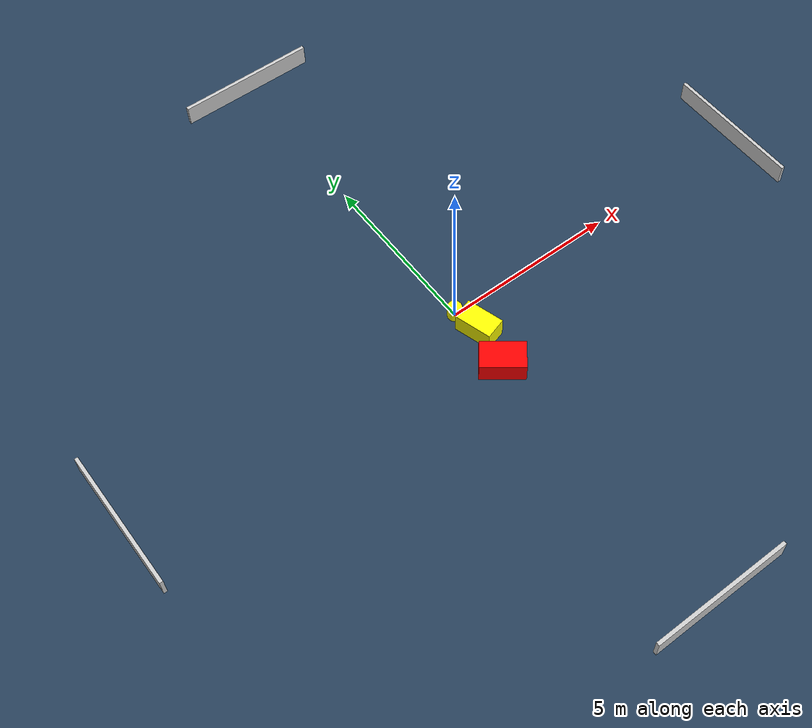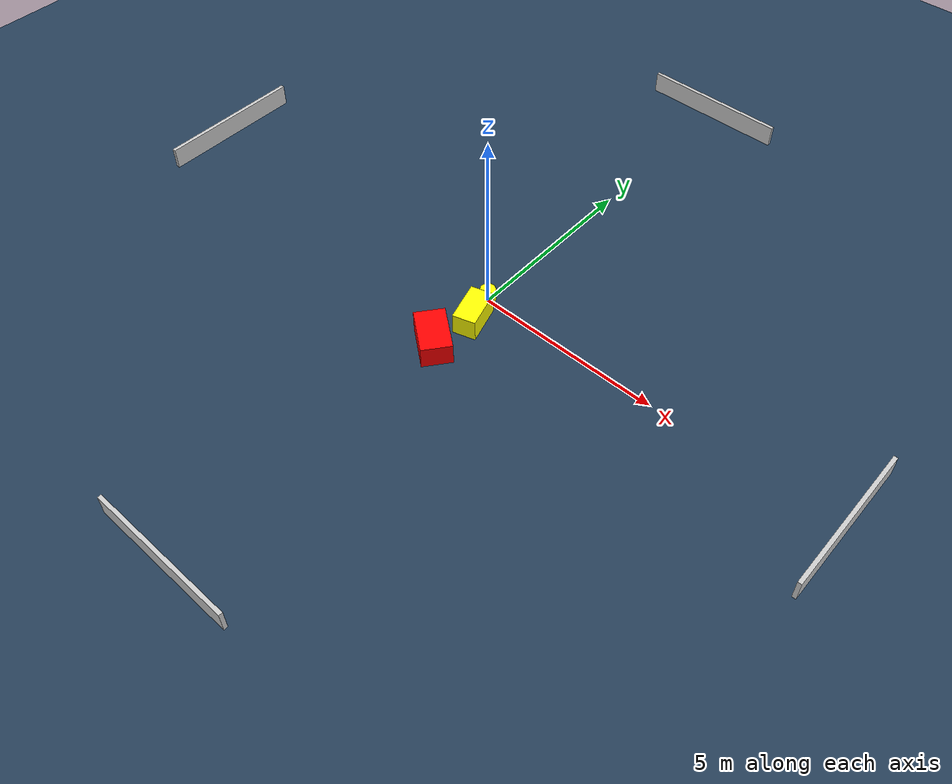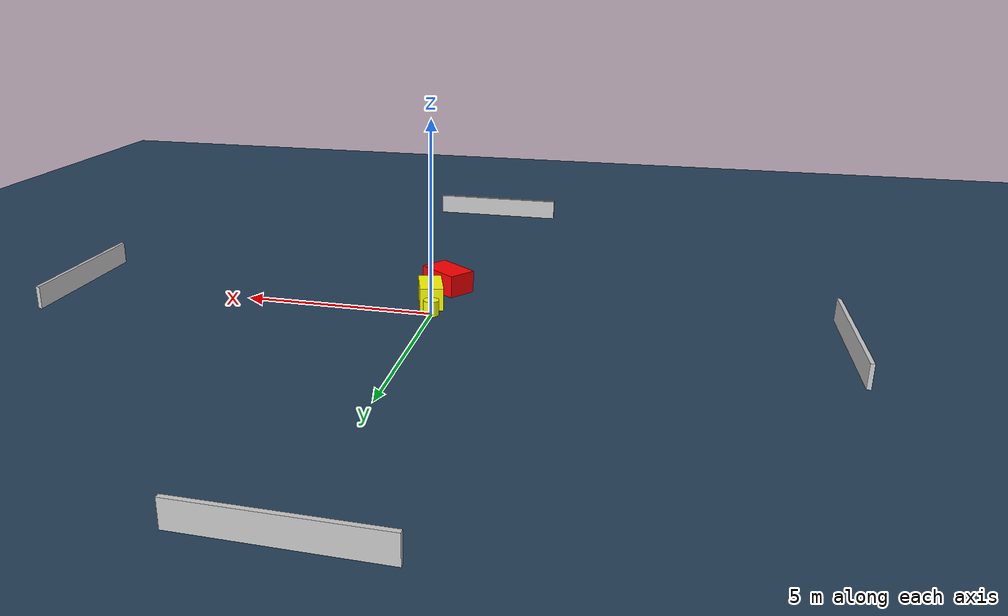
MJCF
<?xml version="1.0" ?>
<mujoco model="generated_environment">
  <option timestep="0.01" integrator="RK4" cone="elliptic"/>
  <default>
    <geom density="1"/>
  </default>
  <asset>
    <texture builtin="gradient" height="3072" name="skybox" rgb1="0.3 0.5 0.7" rgb2="0 0 0" type="skybox" width="512"/>
    <texture builtin="checker" height="300" name="groundplane" rgb1="0.2 0.3 0.4" rgb2="0.1 0.2 0.3" type="2d" width="300"/>
    <material name="groundplane" reflectance="0.2" texrepeat="5 5" texture="groundplane"/>
  </asset>
  <worldbody>
    <light dir="0 0 -1" directional="true" pos="0 0 1.5"/>
    <geom condim="3" friction="0.5 0.005 0.001" material="groundplane" name="floor" pos="0 0 0" size="0 0 0.05" type="plane"/>
    <body name="walls">
      <geom name="wall_1" condim="4" pos="-10.0 0.0 0.3" rgba="0.800000011920929 0.800000011920929 0.800000011920929 1.0" size="0.05 2.0 0.3" type="box"/>
      <geom name="wall_2" condim="4" pos="10.0 0.0 0.3" rgba="0.800000011920929 0.800000011920929 0.800000011920929 1.0" size="0.05 2.0 0.3" type="box"/>
      <geom name="wall_3" condim="4" pos="0.0 -10.0 0.3" rgba="0.800000011920929 0.800000011920929 0.800000011920929 1.0" size="2.0 0.05 0.3" type="box"/>
      <geom name="wall_4" condim="4" pos="0.0 10.0 0.3" rgba="0.800000011920929 0.800000011920929 0.800000011920929 1.0" size="2.0 0.05 0.3" type="box"/>
    </body>
    <body name="robot">
      <joint name="joint_x" type="slide" pos="0 0 0" axis="1 0 0"/>
      <joint name="joint_y" type="slide" pos="0 0 0" axis="0 1 0"/>
      <geom name="robot" type="cylinder" pos="0.0 0.0 0.2" size="0.2 0.2 0.0" mass="5.0" friction="1.0 0.005 0.0001" condim="4" rgba="1.0 1.0 0.0 1.0"/>
    </body>
    <body name="obstacle_1_movable">
      <geom name="obstacle_1_movable" condim="4" pos="0.19761539729066982 -0.7703235266430971 0.3" euler="0 0 106.79566542667152" friction="0.0 0.005 0.001" rgba="1.0 1.0 0.0 1.0" size="0.536913758358124 0.30482101081108864 0.3" type="box" mass="0.1"/>
      <joint type="free"/>
    </body>
    <body name="obstacle_2_static">
      <geom name="obstacle_2_static" condim="4" pos="0.009141783428938219 -1.99342305872855 0.3" euler="0 0 52.056797074312335" friction="0.0 0.005 0.001" rgba="1.0 0.0 0.0 1.0" size="0.3940012432779174 0.6142160623273782 0.3" type="box"/>
    </body>
  </worldbody>
  <actuator>
    <motor name="actuator_x" joint="joint_x" gear="1" ctrlrange="-1 1"/>
    <motor name="actuator_y" joint="joint_y" gear="1" ctrlrange="-1 1"/>
  </actuator>
</mujoco>
